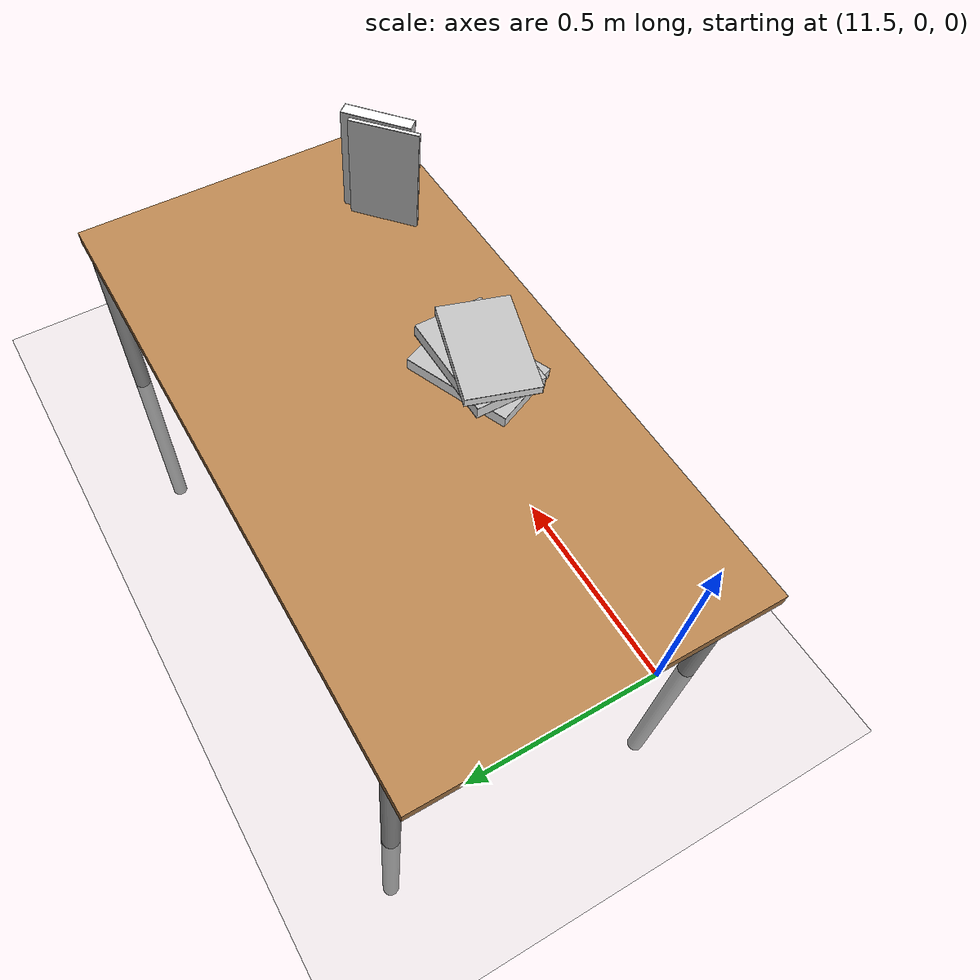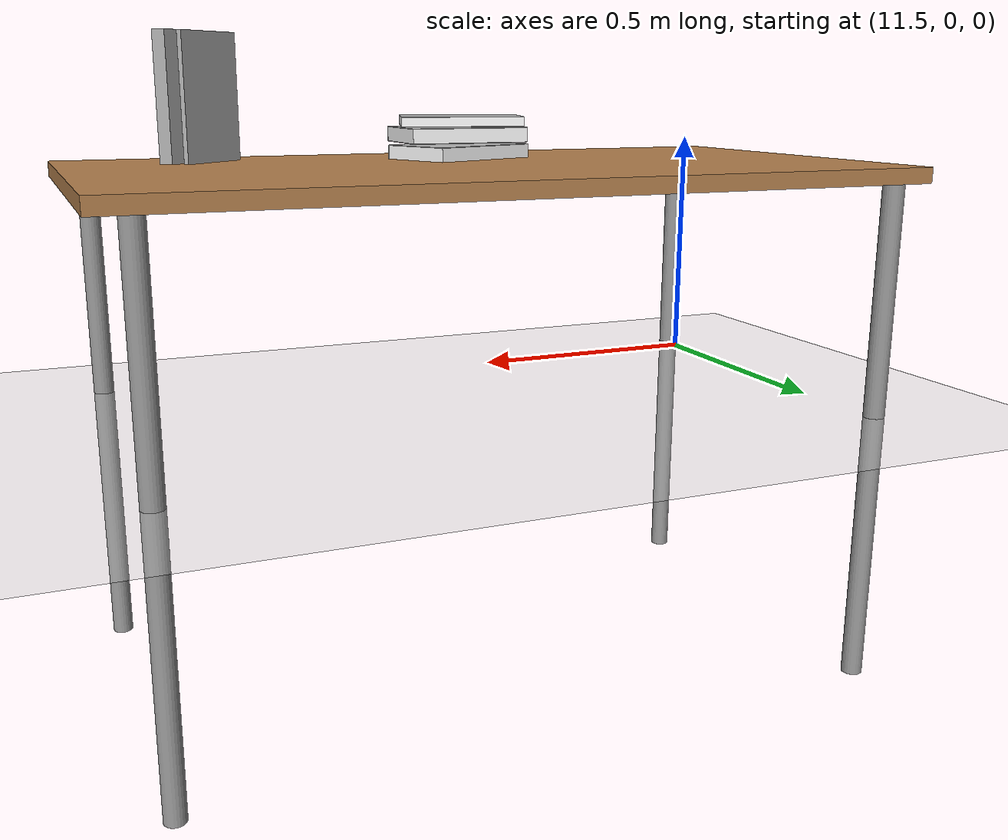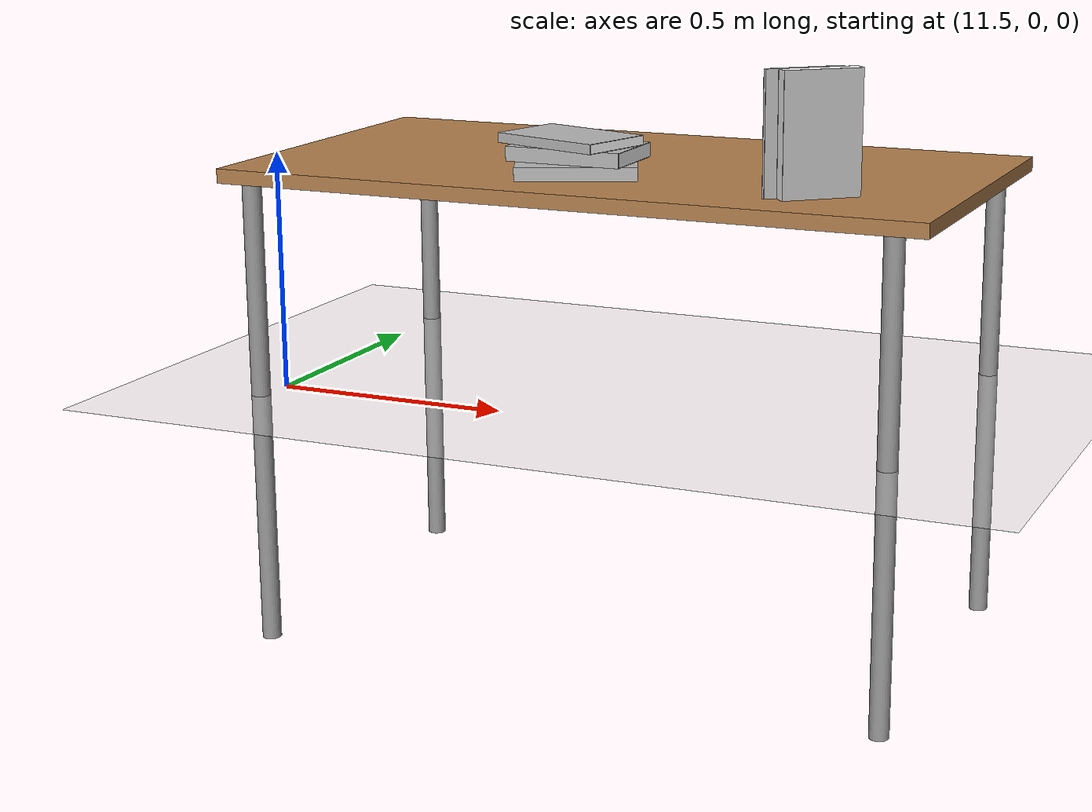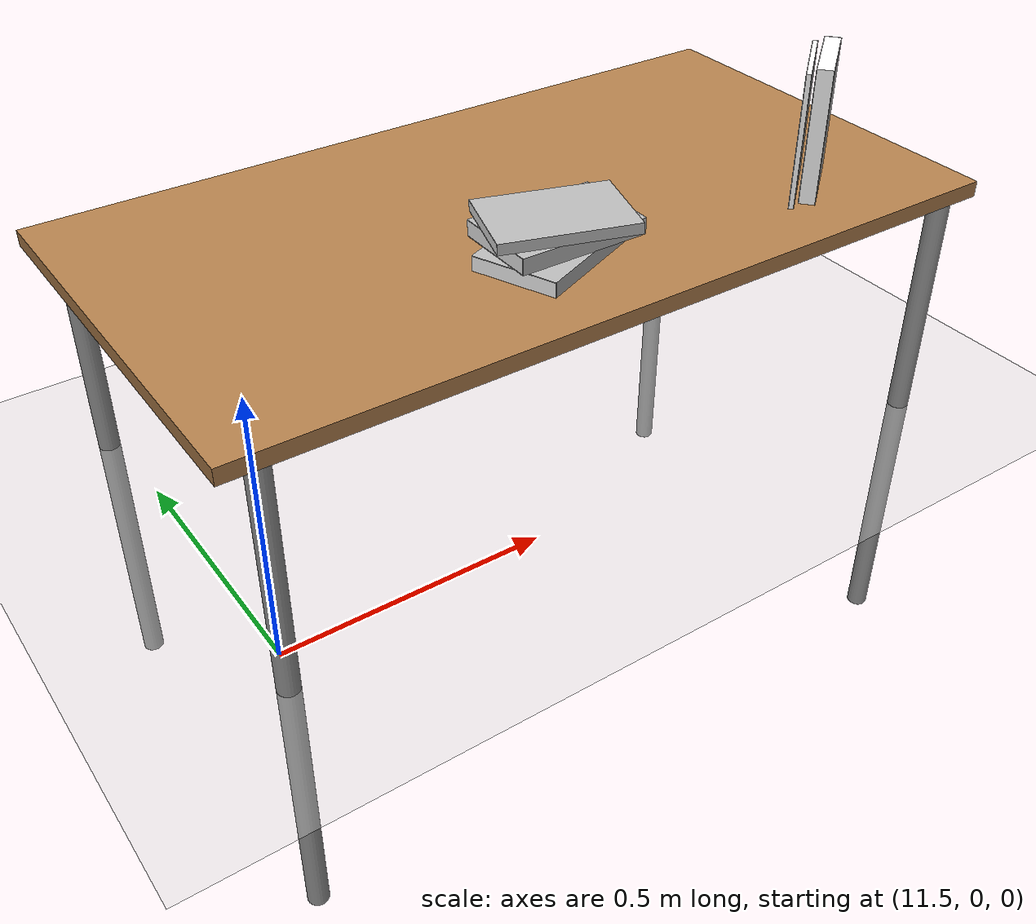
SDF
<sdf version="1.6">
 <world name="default">
  <model name="ground_plane">
   <static>1</static>
   <link name="link">
    <collision name="collision">
     <geometry><plane><normal>0 0 1</normal><size>100 100</size></plane></geometry>
     <surface>
      <contact><collide_bitmask>65535</collide_bitmask></contact>
      <friction><ode><mu>100</mu><mu2>50</mu2></ode></friction>
     </surface>
    </collision>
    <visual name="visual">
     <cast_shadows>0</cast_shadows>
     <geometry><plane><normal>0 0 1</normal><size>100 100</size></plane></geometry>
     <material>
      <script><uri>file://media/materials/scripts/gazebo.material</uri><name>Gazebo/Grey</name></script>
     </material>
    </visual>
   </link>
  </model>
  <model name="table">
   <static>1</static>
   <link name="link">
    <collision name="surface">
     <pose>0 0 1 0 -0 0</pose>
     <geometry><box><size>1.5 0.8 0.03</size></box></geometry>
     <surface><friction><ode><mu>0.6</mu><mu2>0.6</mu2></ode></friction></surface>
    </collision>
    <visual name="visual1">
     <pose>0 0 1 0 -0 0</pose>
     <geometry><box><size>1.5 0.8 0.03</size></box></geometry>
     <material>
      <script><uri>file://media/materials/scripts/gazebo.material</uri><name>Gazebo/Wood</name></script>
     </material>
    </visual>
    <collision name="front_left_leg">
     <pose>0.68 0.38 0.5 0 -0 0</pose>
     <geometry><cylinder><radius>0.02</radius><length>1</length></cylinder></geometry>
    </collision>
    <visual name="front_left_leg">
     <pose>0.68 0.38 0.5 0 -0 0</pose>
     <geometry><cylinder><radius>0.02</radius><length>1</length></cylinder></geometry>
     <material>
      <script><uri>file://media/materials/scripts/gazebo.material</uri><name>Gazebo/Grey</name></script>
     </material>
    </visual>
    <collision name="front_right_leg">
     <pose>0.68 -0.38 0.5 0 -0 0</pose>
     <geometry><cylinder><radius>0.02</radius><length>1</length></cylinder></geometry>
    </collision>
    <visual name="front_right_leg">
     <pose>0.68 -0.38 0.5 0 -0 0</pose>
     <geometry><cylinder><radius>0.02</radius><length>1</length></cylinder></geometry>
     <material>
      <script><uri>file://media/materials/scripts/gazebo.material</uri><name>Gazebo/Grey</name></script>
     </material>
    </visual>
    <collision name="back_right_leg">
     <pose>-0.68 -0.38 0.5 0 -0 0</pose>
     <geometry><cylinder><radius>0.02</radius><length>1</length></cylinder></geometry>
    </collision>
    <visual name="back_right_leg">
     <pose>-0.68 -0.38 0.5 0 -0 0</pose>
     <geometry><cylinder><radius>0.02</radius><length>1</length></cylinder></geometry>
     <material>
      <script><uri>file://media/materials/scripts/gazebo.material</uri><name>Gazebo/Grey</name></script>
     </material>
    </visual>
    <collision name="back_left_leg">
     <pose>-0.68 0.38 0.5 0 -0 0</pose>
     <geometry><cylinder><radius>0.02</radius><length>1</length></cylinder></geometry>
    </collision>
    <visual name="back_left_leg">
     <pose>-0.68 0.38 0.5 0 -0 0</pose>
     <geometry><cylinder><radius>0.02</radius><length>1</length></cylinder></geometry>
     <material>
      <script><uri>file://media/materials/scripts/gazebo.material</uri><name>Gazebo/Grey</name></script>
     </material>
    </visual>
   </link>
   <pose>12.1604 0.310021 -0.542091 0 -0 0</pose>
  </model>
  <model name="book_11">
   <link name="cover">
    <pose>0 -0.000108 0.015405 0 -0 0</pose>
    <visual name="visual">
     <geometry><box><size>0.245 0.16 0.03</size></box></geometry>
     <material>
      <script>
       <uri>model://book_11/materials/scripts</uri>
       <uri>model://book_11/materials/textures</uri>
       <name>book_11</name>
      </script>
     </material>
    </visual>
    <collision name="collision"><geometry><box><size>0.245 0.16 0.03</size></box></geometry></collision>
   </link>
   <link name="page">
    <pose>0 0.000608 0.015405 0 -0 0</pose>
    <visual name="visual">
     <geometry><box><size>0.24502 0.15862 0.028</size></box></geometry>
     <material>
      <lighting>1</lighting>
      <ambient>1 1 1 1</ambient>
      <diffuse>1 1 1 1</diffuse>
      <specular>0.01 0.01 0.01 1</specular>
      <emissive>0 0 0 1</emissive>
      <shader type="vertex"><normal_map>__default__</normal_map></shader>
     </material>
    </visual>
    <collision name="collision"><geometry><box><size>0.245 0.16 0.03</size></box></geometry></collision>
   </link>
   <static>1</static>
   <pose>12.1191 0.128115 0.470492 0 -0 0.395633</pose>
  </model>
  <model name="book_15">
   <link name="cover">
    <pose>0 -0.000108 0.015405 0 -0 0</pose>
    <visual name="visual">
     <geometry><box><size>0.245 0.16 0.03</size></box></geometry>
     <material>
      <script>
       <uri>model://book_15/materials/scripts</uri>
       <uri>model://book_15/materials/textures</uri>
       <name>book_15</name>
      </script>
     </material>
    </visual>
    <collision name="collision"><geometry><box><size>0.245 0.16 0.03</size></box></geometry></collision>
   </link>
   <link name="page">
    <pose>0 0.000608 0.015405 0 -0 0</pose>
    <visual name="visual">
     <geometry><box><size>0.24502 0.15862 0.028</size></box></geometry>
     <material>
      <lighting>1</lighting>
      <ambient>1 1 1 1</ambient>
      <diffuse>1 1 1 1</diffuse>
      <specular>0.01 0.01 0.01 1</specular>
      <emissive>0 0 0 1</emissive>
      <shader type="vertex"><normal_map>__default__</normal_map></shader>
     </material>
    </visual>
    <collision name="collision"><geometry><box><size>0.245 0.16 0.03</size></box></geometry></collision>
   </link>
   <static>1</static>
   <pose>12.1234 0.126335 0.505643 0 -0 0</pose>
  </model>
  <model name="book_5">
   <link name="cover">
    <pose>0 -0.000108 0.01 0 -0 0</pose>
    <visual name="visual">
     <geometry><box><size>0.245 0.16 0.02</size></box></geometry>
     <material>
      <script>
       <uri>model://book_5/materials/scripts</uri>
       <uri>model://book_5/materials/textures</uri>
       <name>book_5</name>
      </script>
     </material>
    </visual>
    <collision name="collision"><geometry><box><size>0.245 0.16 0.02</size></box></geometry></collision>
   </link>
   <link name="page">
    <pose>0 0.000608 0.01 0 -0 0</pose>
    <visual name="visual">
     <geometry><box><size>0.24502 0.15862 0.018</size></box></geometry>
     <material>
      <lighting>1</lighting>
      <ambient>1 1 1 1</ambient>
      <diffuse>1 1 1 1</diffuse>
      <specular>0.01 0.01 0.01 1</specular>
      <emissive>0 0 0 1</emissive>
      <shader type="vertex"><normal_map>__default__</normal_map></shader>
     </material>
    </visual>
    <collision name="collision"><geometry><box><size>0.245 0.16 0.018</size></box></geometry></collision>
   </link>
   <static>1</static>
   <pose>12.1119 0.115169 0.537655 0 0 -0.300304</pose>
  </model>
  <model name="book_19">
   <link name="cover">
    <pose>0 -0.000108 0.015405 0 -0 0</pose>
    <visual name="visual">
     <geometry><box><size>0.245 0.16 0.03</size></box></geometry>
     <material>
      <script>
       <uri>model://book_19/materials/scripts</uri>
       <uri>model://book_19/materials/textures</uri>
       <name>book_19</name>
      </script>
     </material>
    </visual>
    <collision name="collision"><geometry><box><size>0.245 0.16 0.03</size></box></geometry></collision>
   </link>
   <link name="page">
    <pose>0 0.000608 0.015405 0 -0 0</pose>
    <visual name="visual">
     <geometry><box><size>0.24502 0.15862 0.028</size></box></geometry>
     <material>
      <lighting>1</lighting>
      <ambient>1 1 1 1</ambient>
      <diffuse>1 1 1 1</diffuse>
      <specular>0.01 0.01 0.01 1</specular>
      <emissive>0 0 0 1</emissive>
      <shader type="vertex"><normal_map>__default__</normal_map></shader>
     </material>
    </visual>
    <collision name="collision"><geometry><box><size>0.245 0.16 0.03</size></box></geometry></collision>
   </link>
   <static>1</static>
   <pose>12.6388 0.081095 0.596425 -0.866763 -1.57079 3.14159</pose>
  </model>
  <model name="book_7">
   <link name="cover">
    <pose>0 -0.000108 0.005 0 -0 0</pose>
    <visual name="visual">
     <geometry><box><size>0.245 0.16 0.01</size></box></geometry>
     <material>
      <script>
       <uri>model://book_7/materials/scripts</uri>
       <uri>model://book_7/materials/textures</uri>
       <name>book_7</name>
      </script>
     </material>
    </visual>
    <collision name="collision"><geometry><box><size>0.245 0.16 0.01</size></box></geometry></collision>
   </link>
   <link name="page">
    <pose>0 0.000608 0.005 0 -0 0</pose>
    <visual name="visual">
     <geometry><box><size>0.24502 0.15862 0.008</size></box></geometry>
     <material>
      <lighting>1</lighting>
      <ambient>1 1 1 1</ambient>
      <diffuse>1 1 1 1</diffuse>
      <specular>0.01 0.01 0.01 1</specular>
      <emissive>0 0 0 1</emissive>
      <shader type="vertex"><normal_map>__default__</normal_map></shader>
     </material>
    </visual>
    <collision name="collision"><geometry><box><size>0.245 0.16 0.008</size></box></geometry></collision>
   </link>
   <static>1</static>
   <pose>12.6101 0.078069 0.595721 -0.843293 -1.57079 3.14159</pose>
  </model>
 </world>
</sdf>
